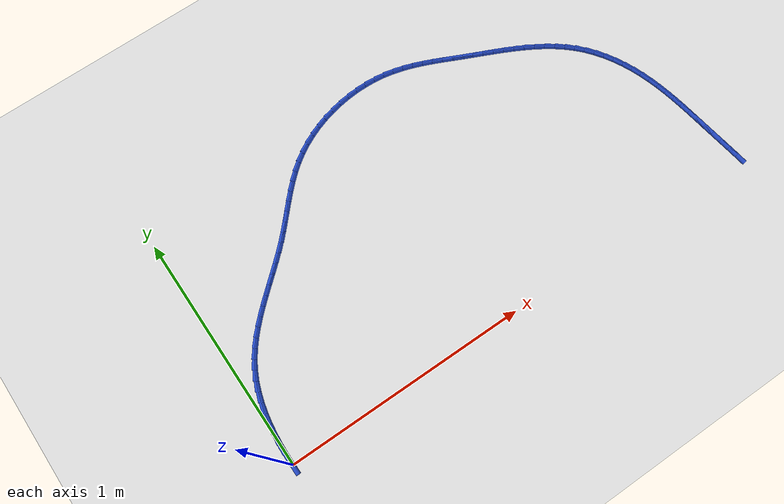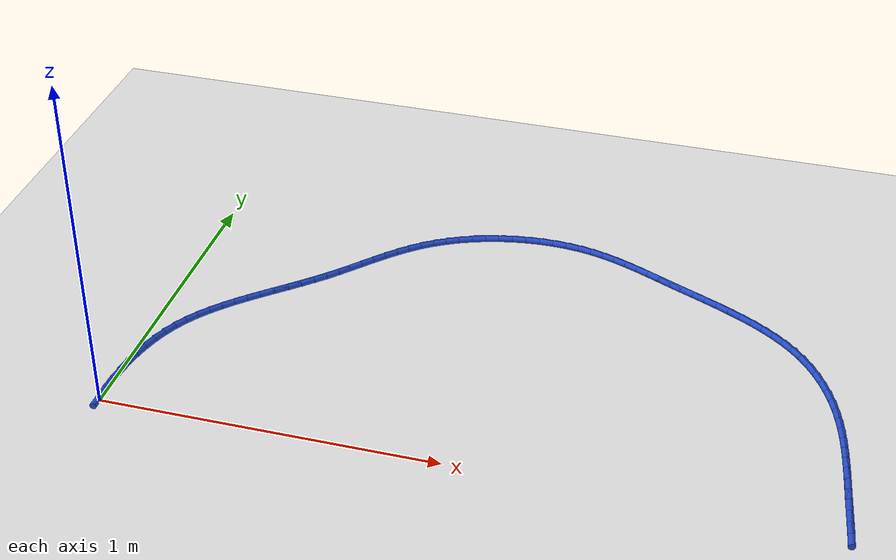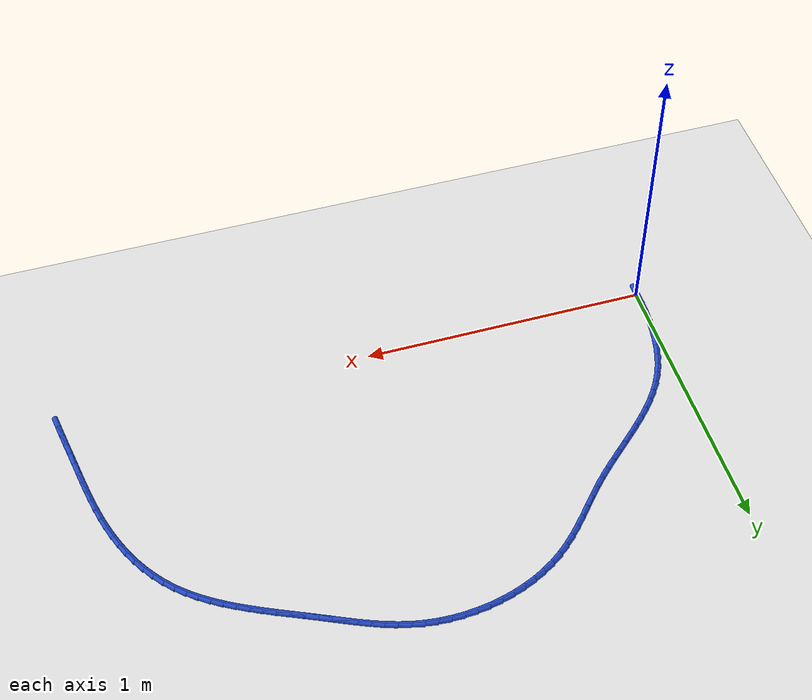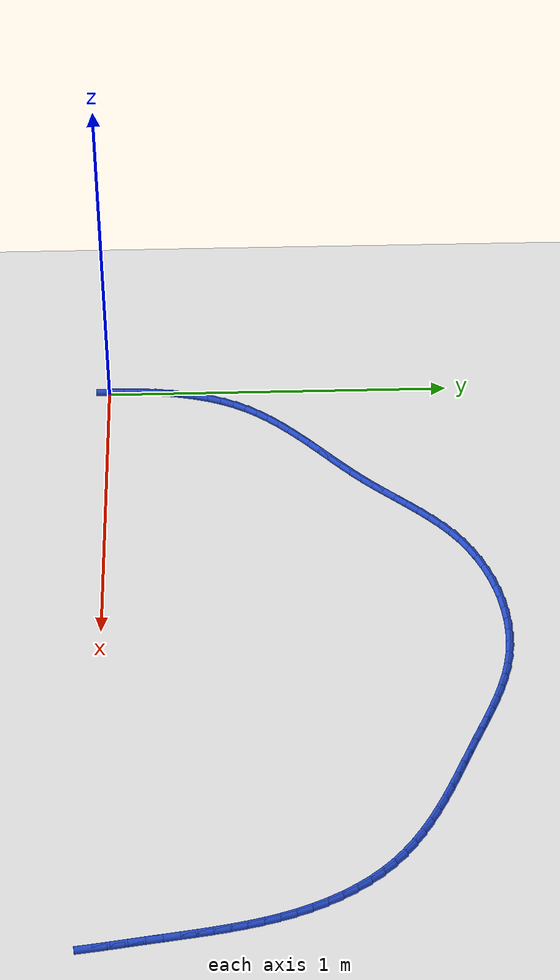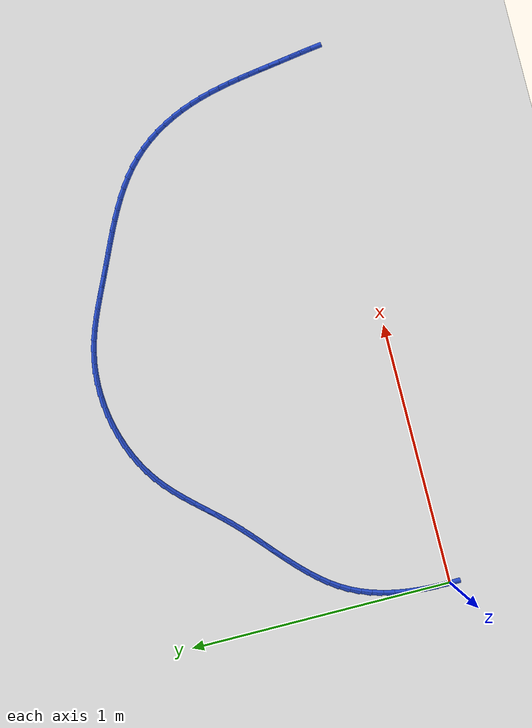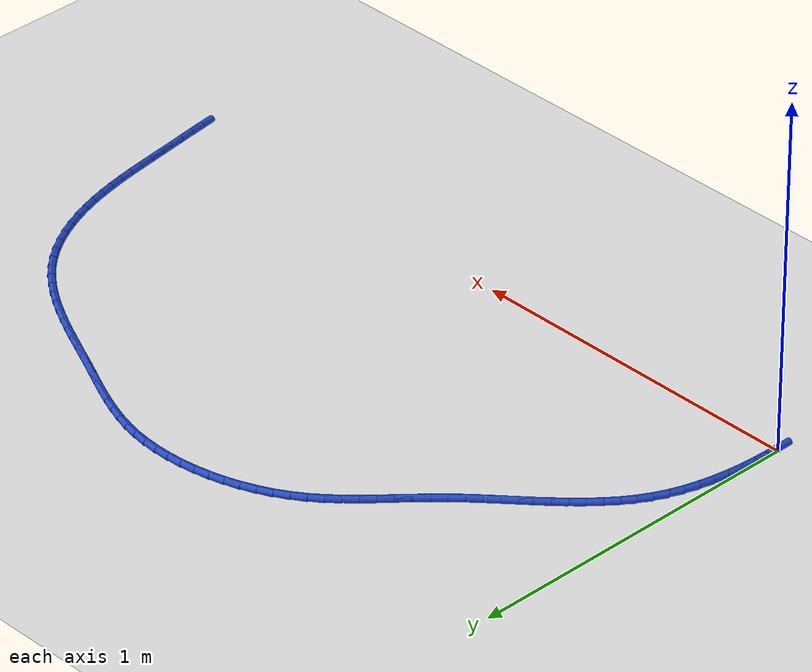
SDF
<sdf version="1.6">
 <world name="default">
  <model name="ground_plane">
   <static>1</static>
   <link name="link">
    <collision name="collision">
     <geometry><plane><normal>0 0 1</normal><size>100 100</size></plane></geometry>
     <surface><friction><ode><mu>100</mu><mu2>50</mu2></ode></friction></surface>
    </collision>
    <visual name="visual">
     <cast_shadows>0</cast_shadows>
     <geometry><plane><normal>0 0 1</normal><size>100 100</size></plane></geometry>
     <material>
      <script><uri>file://media/materials/scripts/gazebo.material</uri><name>Gazebo/WhiteGlow</name></script>
     </material>
    </visual>
   </link>
  </model>
  <model name="line">
   <link name="link_1">
    <pose>-5.092528736734469e-05 0.04307818474582921 0.01 0 1.57 1.536348133848838</pose>
    <collision name="collision">
     <geometry><cylinder><radius>0.01</radius><length>0.08</length></cylinder></geometry>
    </collision>
    <visual name="visual">
     <material>
      <script><name>Gazebo/Blue</name><uri>file://media/materials/scripts/gazebo.material</uri></script>
     </material>
     <geometry><cylinder><radius>0.01</radius><length>0.08</length></cylinder></geometry>
    </visual>
   </link>
   <link name="link_2">
    <pose>0.0014344221991047141 0.08617942663825474 0.01 0 1.57 1.4964940591130282</pose>
    <collision name="collision">
     <geometry><cylinder><radius>0.01</radius><length>0.08</length></cylinder></geometry>
    </collision>
    <visual name="visual">
     <material>
      <script><name>Gazebo/Blue</name><uri>file://media/materials/scripts/gazebo.material</uri></script>
     </material>
     <geometry><cylinder><radius>0.01</radius><length>0.08</length></cylinder></geometry>
    </visual>
   </link>
   <link name="link_3">
    <pose>0.004627960893907758 0.12908066826286146 0.01 0 1.57 1.4519182333033531</pose>
    <collision name="collision">
     <geometry><cylinder><radius>0.01</radius><length>0.08</length></cylinder></geometry>
    </collision>
    <visual name="visual">
     <material>
      <script><name>Gazebo/Blue</name><uri>file://media/materials/scripts/gazebo.material</uri></script>
     </material>
     <geometry><cylinder><radius>0.01</radius><length>0.08</length></cylinder></geometry>
    </visual>
   </link>
   <link name="link_4">
    <pose>0.009701609231533365 0.1715588522052341 0.01 0 1.57 1.4020756962306076</pose>
    <collision name="collision">
     <geometry><cylinder><radius>0.01</radius><length>0.08</length></cylinder></geometry>
    </collision>
    <visual name="visual">
     <material>
      <script><name>Gazebo/Blue</name><uri>file://media/materials/scripts/gazebo.material</uri></script>
     </material>
     <geometry><cylinder><radius>0.01</radius><length>0.08</length></cylinder></geometry>
    </visual>
   </link>
   <link name="link_5">
    <pose>0.016827285646473136 0.2133909210509577 0.01 0 1.57 1.3463943189602026</pose>
    <collision name="collision">
     <geometry><cylinder><radius>0.01</radius><length>0.08</length></cylinder></geometry>
    </collision>
    <visual name="visual">
     <material>
      <script><name>Gazebo/Blue</name><uri>file://media/materials/scripts/gazebo.material</uri></script>
     </material>
     <geometry><cylinder><radius>0.01</radius><length>0.08</length></cylinder></geometry>
    </visual>
   </link>
   <link name="link_6">
    <pose>0.026176908573218673 0.2543538173856171 0.01 0 1.57 1.284310466505673</pose>
    <collision name="collision">
     <geometry><cylinder><radius>0.01</radius><length>0.08</length></cylinder></geometry>
    </collision>
    <visual name="visual">
     <material>
      <script><name>Gazebo/Blue</name><uri>file://media/materials/scripts/gazebo.material</uri></script>
     </material>
     <geometry><cylinder><radius>0.01</radius><length>0.08</length></cylinder></geometry>
    </visual>
   </link>
   <link name="link_7">
    <pose>0.037922396446261525 0.294224483794797 0.01 0 1.57 1.2153267936622847</pose>
    <collision name="collision">
     <geometry><cylinder><radius>0.01</radius><length>0.08</length></cylinder></geometry>
    </collision>
    <visual name="visual">
     <material>
      <script><name>Gazebo/Blue</name><uri>file://media/materials/scripts/gazebo.material</uri></script>
     </material>
     <geometry><cylinder><radius>0.01</radius><length>0.08</length></cylinder></geometry>
    </visual>
   </link>
   <link name="link_8">
    <pose>0.0522356677000933 0.33277986286408223 0.01 0 1.57 1.1390972540197581</pose>
    <collision name="collision">
     <geometry><cylinder><radius>0.01</radius><length>0.08</length></cylinder></geometry>
    </collision>
    <visual name="visual">
     <material>
      <script><name>Gazebo/Blue</name><uri>file://media/materials/scripts/gazebo.material</uri></script>
     </material>
     <geometry><cylinder><radius>0.01</radius><length>0.08</length></cylinder></geometry>
    </visual>
   </link>
   <link name="link_9">
    <pose>0.06928864076920561 0.369796897179058 0.01 0 1.57 1.0562807380471253</pose>
    <collision name="collision">
     <geometry><cylinder><radius>0.01</radius><length>0.08</length></cylinder></geometry>
    </collision>
    <visual name="visual">
     <material>
      <script><name>Gazebo/Blue</name><uri>file://media/materials/scripts/gazebo.material</uri></script>
     </material>
     <geometry><cylinder><radius>0.01</radius><length>0.08</length></cylinder></geometry>
    </visual>
   </link>
   <link name="link_10">
    <pose>0.08923008699137204 0.405072624164393 0.01 0 1.57 0.9768405126058521</pose>
    <collision name="collision">
     <geometry><cylinder><radius>0.01</radius><length>0.08</length></cylinder></geometry>
    </collision>
    <visual name="visual">
     <material>
      <script><name>Gazebo/Blue</name><uri>file://media/materials/scripts/gazebo.material</uri></script>
     </material>
     <geometry><cylinder><radius>0.01</radius><length>0.08</length></cylinder></geometry>
    </visual>
   </link>
   <link name="link_11">
    <pose>0.11191251096359234 0.4386612812104513 0.01 0 1.57 0.9082398506536468</pose>
    <collision name="collision">
     <geometry><cylinder><radius>0.01</radius><length>0.08</length></cylinder></geometry>
    </collision>
    <visual name="visual">
     <material>
      <script><name>Gazebo/Blue</name><uri>file://media/materials/scripts/gazebo.material</uri></script>
     </material>
     <geometry><cylinder><radius>0.01</radius><length>0.08</length></cylinder></geometry>
    </visual>
   </link>
   <link name="link_12">
    <pose>0.13698352509505812 0.47079498009045223 0.01 0 1.57 0.8509957041564209</pose>
    <collision name="collision">
     <geometry><cylinder><radius>0.01</radius><length>0.08</length></cylinder></geometry>
    </collision>
    <visual name="visual">
     <material>
      <script><name>Gazebo/Blue</name><uri>file://media/materials/scripts/gazebo.material</uri></script>
     </material>
     <geometry><cylinder><radius>0.01</radius><length>0.08</length></cylinder></geometry>
    </visual>
   </link>
   <link name="link_13">
    <pose>0.16408665229023406 0.501709382825856 0.01 0 1.57 0.8050177651373709</pose>
    <collision name="collision">
     <geometry><cylinder><radius>0.01</radius><length>0.08</length></cylinder></geometry>
    </collision>
    <visual name="visual">
     <material>
      <script><name>Gazebo/Blue</name><uri>file://media/materials/scripts/gazebo.material</uri></script>
     </material>
     <geometry><cylinder><radius>0.01</radius><length>0.08</length></cylinder></geometry>
    </visual>
   </link>
   <link name="link_14">
    <pose>0.192865415453585 0.5316401514381229 0.01 0 1.57 0.7699622364212031</pose>
    <collision name="collision">
     <geometry><cylinder><radius>0.01</radius><length>0.08</length></cylinder></geometry>
    </collision>
    <visual name="visual">
     <material>
      <script><name>Gazebo/Blue</name><uri>file://media/materials/scripts/gazebo.material</uri></script>
     </material>
     <geometry><cylinder><radius>0.01</radius><length>0.08</length></cylinder></geometry>
    </visual>
   </link>
   <link name="link_15">
    <pose>0.22296333748957556 0.5608229479487133 0.01 0 1.57 0.7454048712055941</pose>
    <collision name="collision">
     <geometry><cylinder><radius>0.01</radius><length>0.08</length></cylinder></geometry>
    </collision>
    <visual name="visual">
     <material>
      <script><name>Gazebo/Blue</name><uri>file://media/materials/scripts/gazebo.material</uri></script>
     </material>
     <geometry><cylinder><radius>0.01</radius><length>0.08</length></cylinder></geometry>
    </visual>
   </link>
   <link name="link_16">
    <pose>0.2540239413026707 0.5894934343790881 0.01 0 1.57 0.7309575903352178</pose>
    <collision name="collision">
     <geometry><cylinder><radius>0.01</radius><length>0.08</length></cylinder></geometry>
    </collision>
    <visual name="visual">
     <material>
      <script><name>Gazebo/Blue</name><uri>file://media/materials/scripts/gazebo.material</uri></script>
     </material>
     <geometry><cylinder><radius>0.01</radius><length>0.08</length></cylinder></geometry>
    </visual>
   </link>
   <link name="link_17">
    <pose>0.285690749797335 0.6178872727507071 0.01 0 1.57 0.726337679582761</pose>
    <collision name="collision">
     <geometry><cylinder><radius>0.01</radius><length>0.08</length></cylinder></geometry>
    </collision>
    <visual name="visual">
     <material>
      <script><name>Gazebo/Blue</name><uri>file://media/materials/scripts/gazebo.material</uri></script>
     </material>
     <geometry><cylinder><radius>0.01</radius><length>0.08</length></cylinder></geometry>
    </visual>
   </link>
   <link name="link_18">
    <pose>0.3176072858780333 0.646240125085031 0.01 0 1.57 0.7314016075255899</pose>
    <collision name="collision">
     <geometry><cylinder><radius>0.01</radius><length>0.08</length></cylinder></geometry>
    </collision>
    <visual name="visual">
     <material>
      <script><name>Gazebo/Blue</name><uri>file://media/materials/scripts/gazebo.material</uri></script>
     </material>
     <geometry><cylinder><radius>0.01</radius><length>0.08</length></cylinder></geometry>
    </visual>
   </link>
   <link name="link_19">
    <pose>0.3494170724492303 0.6747876534035203 0.01 0 1.57 0.7461524125041278</pose>
    <collision name="collision">
     <geometry><cylinder><radius>0.01</radius><length>0.08</length></cylinder></geometry>
    </collision>
    <visual name="visual">
     <material>
      <script><name>Gazebo/Blue</name><uri>file://media/materials/scripts/gazebo.material</uri></script>
     </material>
     <geometry><cylinder><radius>0.01</radius><length>0.08</length></cylinder></geometry>
    </visual>
   </link>
   <link name="link_20">
    <pose>0.38076363241539085 0.7037655197276352 0.01 0 1.57 0.7707244732574585</pose>
    <collision name="collision">
     <geometry><cylinder><radius>0.01</radius><length>0.08</length></cylinder></geometry>
    </collision>
    <visual name="visual">
     <material>
      <script><name>Gazebo/Blue</name><uri>file://media/materials/scripts/gazebo.material</uri></script>
     </material>
     <geometry><cylinder><radius>0.01</radius><length>0.08</length></cylinder></geometry>
    </visual>
   </link>
   <link name="link_21">
    <pose>0.4112904886809796 0.7334093860788361 0.01 0 1.57 0.8033352467335615</pose>
    <collision name="collision">
     <geometry><cylinder><radius>0.01</radius><length>0.08</length></cylinder></geometry>
    </collision>
    <visual name="visual">
     <material>
      <script><name>Gazebo/Blue</name><uri>file://media/materials/scripts/gazebo.material</uri></script>
     </material>
     <geometry><cylinder><radius>0.01</radius><length>0.08</length></cylinder></geometry>
    </visual>
   </link>
   <link name="link_22">
    <pose>0.4407071087868779 0.7639006949583271 0.01 0 1.57 0.8291740088223976</pose>
    <collision name="collision">
     <geometry><cylinder><radius>0.01</radius><length>0.08</length></cylinder></geometry>
    </collision>
    <visual name="visual">
     <material>
      <script><name>Gazebo/Blue</name><uri>file://media/materials/scripts/gazebo.material</uri></script>
     </material>
     <geometry><cylinder><radius>0.01</radius><length>0.08</length></cylinder></geometry>
    </visual>
   </link>
   <link name="link_23">
    <pose>0.4692128195523241 0.795018127755733 0.01 0 1.57 0.8413790691090767</pose>
    <collision name="collision">
     <geometry><cylinder><radius>0.01</radius><length>0.08</length></cylinder></geometry>
    </collision>
    <visual name="visual">
     <material>
      <script><name>Gazebo/Blue</name><uri>file://media/materials/scripts/gazebo.material</uri></script>
     </material>
     <geometry><cylinder><radius>0.01</radius><length>0.08</length></cylinder></geometry>
    </visual>
   </link>
   <link name="link_24">
    <pose>0.4972274812149523 0.8263590438184976 0.01 0 1.57 0.8397617513056158</pose>
    <collision name="collision">
     <geometry><cylinder><radius>0.01</radius><length>0.08</length></cylinder></geometry>
    </collision>
    <visual name="visual">
     <material>
      <script><name>Gazebo/Blue</name><uri>file://media/materials/scripts/gazebo.material</uri></script>
     </material>
     <geometry><cylinder><radius>0.01</radius><length>0.08</length></cylinder></geometry>
    </visual>
   </link>
   <link name="link_25">
    <pose>0.525172015375039 0.8575199298442716 0.01 0 1.57 0.8241406312690777</pose>
    <collision name="collision">
     <geometry><cylinder><radius>0.01</radius><length>0.08</length></cylinder></geometry>
    </collision>
    <visual name="visual">
     <material>
      <script><name>Gazebo/Blue</name><uri>file://media/materials/scripts/gazebo.material</uri></script>
     </material>
     <geometry><cylinder><radius>0.01</radius><length>0.08</length></cylinder></geometry>
    </visual>
   </link>
   <link name="link_26">
    <pose>0.5534673436328607 0.8880972725307065 0.01 0 1.57 0.7943182456971727</pose>
    <collision name="collision">
     <geometry><cylinder><radius>0.01</radius><length>0.08</length></cylinder></geometry>
    </collision>
    <visual name="visual">
     <material>
      <script><name>Gazebo/Blue</name><uri>file://media/materials/scripts/gazebo.material</uri></script>
     </material>
     <geometry><cylinder><radius>0.01</radius><length>0.08</length></cylinder></geometry>
    </visual>
   </link>
   <link name="link_27">
    <pose>0.582534387588694 0.9176875585754533 0.01 0 1.57 0.7501752005780918</pose>
    <collision name="collision">
     <geometry><cylinder><radius>0.01</radius><length>0.08</length></cylinder></geometry>
    </collision>
    <visual name="visual">
     <material>
      <script><name>Gazebo/Blue</name><uri>file://media/materials/scripts/gazebo.material</uri></script>
     </material>
     <geometry><cylinder><radius>0.01</radius><length>0.08</length></cylinder></geometry>
    </visual>
   </link>
   <link name="link_28">
    <pose>0.6127940688428153 0.9458872746761625 0.01 0 1.57 0.6918539752741508</pose>
    <collision name="collision">
     <geometry><cylinder><radius>0.01</radius><length>0.08</length></cylinder></geometry>
    </collision>
    <visual name="visual">
     <material>
      <script><name>Gazebo/Blue</name><uri>file://media/materials/scripts/gazebo.material</uri></script>
     </material>
     <geometry><cylinder><radius>0.01</radius><length>0.08</length></cylinder></geometry>
    </visual>
   </link>
   <link name="link_29">
    <pose>0.644667308995501 0.9722929075304855 0.01 0 1.57 0.6203816824784673</pose>
    <collision name="collision">
     <geometry><cylinder><radius>0.01</radius><length>0.08</length></cylinder></geometry>
    </collision>
    <visual name="visual">
     <material>
      <script><name>Gazebo/Blue</name><uri>file://media/materials/scripts/gazebo.material</uri></script>
     </material>
     <geometry><cylinder><radius>0.01</radius><length>0.08</length></cylinder></geometry>
    </visual>
   </link>
   <link name="link_30">
    <pose>0.6785599540155693 0.9965087067793307 0.01 0 1.57 0.5447760766698809</pose>
    <collision name="collision">
     <geometry><cylinder><radius>0.01</radius><length>0.08</length></cylinder></geometry>
    </collision>
    <visual name="visual">
     <material>
      <script><name>Gazebo/Blue</name><uri>file://media/materials/scripts/gazebo.material</uri></script>
     </material>
     <geometry><cylinder><radius>0.01</radius><length>0.08</length></cylinder></geometry>
    </visual>
   </link>
   <link name="link_31">
    <pose>0.7145421572466443 1.0183117813437406 0.01 0 1.57 0.4727266441883336</pose>
    <collision name="collision">
     <geometry><cylinder><radius>0.01</radius><length>0.08</length></cylinder></geometry>
    </collision>
    <visual name="visual">
     <material>
      <script><name>Gazebo/Blue</name><uri>file://media/materials/scripts/gazebo.material</uri></script>
     </material>
     <geometry><cylinder><radius>0.01</radius><length>0.08</length></cylinder></geometry>
    </visual>
   </link>
   <link name="link_32">
    <pose>0.7523544042412301 1.037648997037755 0.01 0 1.57 0.4038822681004972</pose>
    <collision name="collision">
     <geometry><cylinder><radius>0.01</radius><length>0.08</length></cylinder></geometry>
    </collision>
    <visual name="visual">
     <material>
      <script><name>Gazebo/Blue</name><uri>file://media/materials/scripts/gazebo.material</uri></script>
     </material>
     <geometry><cylinder><radius>0.01</radius><length>0.08</length></cylinder></geometry>
    </visual>
   </link>
   <link name="link_33">
    <pose>0.7917233100110839 1.054474362077449 0.01 0 1.57 0.33753491464490193</pose>
    <collision name="collision">
     <geometry><cylinder><radius>0.01</radius><length>0.08</length></cylinder></geometry>
    </collision>
    <visual name="visual">
     <material>
      <script><name>Gazebo/Blue</name><uri>file://media/materials/scripts/gazebo.material</uri></script>
     </material>
     <geometry><cylinder><radius>0.01</radius><length>0.08</length></cylinder></geometry>
    </visual>
   </link>
   <link name="link_34">
    <pose>0.8323754895679619 1.068741884678896 0.01 0 1.57 0.27297107034029305</pose>
    <collision name="collision">
     <geometry><cylinder><radius>0.01</radius><length>0.08</length></cylinder></geometry>
    </collision>
    <visual name="visual">
     <material>
      <script><name>Gazebo/Blue</name><uri>file://media/materials/scripts/gazebo.material</uri></script>
     </material>
     <geometry><cylinder><radius>0.01</radius><length>0.08</length></cylinder></geometry>
    </visual>
   </link>
   <link name="link_35">
    <pose>0.8740375579236208 1.0804055730581705 0.01 0 1.57 0.2094793990500455</pose>
    <collision name="collision">
     <geometry><cylinder><radius>0.01</radius><length>0.08</length></cylinder></geometry>
    </collision>
    <visual name="visual">
     <material>
      <script><name>Gazebo/Blue</name><uri>file://media/materials/scripts/gazebo.material</uri></script>
     </material>
     <geometry><cylinder><radius>0.01</radius><length>0.08</length></cylinder></geometry>
    </visual>
   </link>
   <link name="link_36">
    <pose>0.9164361300898182 1.089419435431347 0.01 0 1.57 0.14635147796256123</pose>
    <collision name="collision">
     <geometry><cylinder><radius>0.01</radius><length>0.08</length></cylinder></geometry>
    </collision>
    <visual name="visual">
     <material>
      <script><name>Gazebo/Blue</name><uri>file://media/materials/scripts/gazebo.material</uri></script>
     </material>
     <geometry><cylinder><radius>0.01</radius><length>0.08</length></cylinder></geometry>
    </visual>
   </link>
   <link name="link_37">
    <pose>0.9592978210783093 1.0957374800144988 0.01 0 1.57 0.0828786281595138</pose>
    <collision name="collision">
     <geometry><cylinder><radius>0.01</radius><length>0.08</length></cylinder></geometry>
    </collision>
    <visual name="visual">
     <material>
      <script><name>Gazebo/Blue</name><uri>file://media/materials/scripts/gazebo.material</uri></script>
     </material>
     <geometry><cylinder><radius>0.01</radius><length>0.08</length></cylinder></geometry>
    </visual>
   </link>
   <link name="link_38">
    <pose>1.0023492459008523 1.099313715023701 0.01 0 1.57 0.018347359266134493</pose>
    <collision name="collision">
     <geometry><cylinder><radius>0.01</radius><length>0.08</length></cylinder></geometry>
    </collision>
    <visual name="visual">
     <material>
      <script><name>Gazebo/Blue</name><uri>file://media/materials/scripts/gazebo.material</uri></script>
     </material>
     <geometry><cylinder><radius>0.01</radius><length>0.08</length></cylinder></geometry>
    </visual>
   </link>
   <link name="link_39">
    <pose>1.0453170195692028 1.100102148675027 0.01 0 1.57 -0.04796421919625381</pose>
    <collision name="collision">
     <geometry><cylinder><radius>0.01</radius><length>0.08</length></cylinder></geometry>
    </collision>
    <visual name="visual">
     <material>
      <script><name>Gazebo/Blue</name><uri>file://media/materials/scripts/gazebo.material</uri></script>
     </material>
     <geometry><cylinder><radius>0.01</radius><length>0.08</length></cylinder></geometry>
    </visual>
   </link>
   <link name="link_40">
    <pose>1.0879277570951178 1.0980567891845514 0.01 0 1.57 -0.11678646031318861</pose>
    <collision name="collision">
     <geometry><cylinder><radius>0.01</radius><length>0.08</length></cylinder></geometry>
    </collision>
    <visual name="visual">
     <material>
      <script><name>Gazebo/Blue</name><uri>file://media/materials/scripts/gazebo.material</uri></script>
     </material>
     <geometry><cylinder><radius>0.01</radius><length>0.08</length></cylinder></geometry>
    </visual>
   </link>
   <link name="link_41">
    <pose>1.129908073490354 1.093131644768348 0.01 0 1.57 -0.18860787591641537</pose>
    <collision name="collision">
     <geometry><cylinder><radius>0.01</radius><length>0.08</length></cylinder></geometry>
    </collision>
    <visual name="visual">
     <material>
      <script><name>Gazebo/Blue</name><uri>file://media/materials/scripts/gazebo.material</uri></script>
     </material>
     <geometry><cylinder><radius>0.01</radius><length>0.08</length></cylinder></geometry>
    </visual>
   </link>
   <link name="link_42">
    <pose>1.1709930747108805 1.0852894790727863 0.01 0 1.57 -0.257580707574147</pose>
    <collision name="collision">
     <geometry><cylinder><radius>0.01</radius><length>0.08</length></cylinder></geometry>
    </collision>
    <visual name="visual">
     <material>
      <script><name>Gazebo/Blue</name><uri>file://media/materials/scripts/gazebo.material</uri></script>
     </material>
     <geometry><cylinder><radius>0.01</radius><length>0.08</length></cylinder></geometry>
    </visual>
   </link>
   <link name="link_43">
    <pose>1.211133324264604 1.0747152246256129 0.01 0 1.57 -0.3163138986401706</pose>
    <collision name="collision">
     <geometry><cylinder><radius>0.01</radius><length>0.08</length></cylinder></geometry>
    </collision>
    <visual name="visual">
     <material>
      <script><name>Gazebo/Blue</name><uri>file://media/materials/scripts/gazebo.material</uri></script>
     </material>
     <geometry><cylinder><radius>0.01</radius><length>0.08</length></cylinder></geometry>
    </visual>
   </link>
   <link name="link_44">
    <pose>1.2505066801687879 1.0618281885050718 0.01 0 1.57 -0.36375824159920217</pose>
    <collision name="collision">
     <geometry><cylinder><radius>0.01</radius><length>0.08</length></cylinder></geometry>
    </collision>
    <visual name="visual">
     <material>
      <script><name>Gazebo/Blue</name><uri>file://media/materials/scripts/gazebo.material</uri></script>
     </material>
     <geometry><cylinder><radius>0.01</radius><length>0.08</length></cylinder></geometry>
    </visual>
   </link>
   <link name="link_45">
    <pose>1.2893018608993845 1.0470588765426507 0.01 0 1.57 -0.3996333123550256</pose>
    <collision name="collision">
     <geometry><cylinder><radius>0.01</radius><length>0.08</length></cylinder></geometry>
    </collision>
    <visual name="visual">
     <material>
      <script><name>Gazebo/Blue</name><uri>file://media/materials/scripts/gazebo.material</uri></script>
     </material>
     <geometry><cylinder><radius>0.01</radius><length>0.08</length></cylinder></geometry>
    </visual>
   </link>
   <link name="link_46">
    <pose>1.327707584932346 1.030837794569836 0.01 0 1.57 -0.4239439633681479</pose>
    <collision name="collision">
     <geometry><cylinder><radius>0.01</radius><length>0.08</length></cylinder></geometry>
    </collision>
    <visual name="visual">
     <material>
      <script><name>Gazebo/Blue</name><uri>file://media/materials/scripts/gazebo.material</uri></script>
     </material>
     <geometry><cylinder><radius>0.01</radius><length>0.08</length></cylinder></geometry>
    </visual>
   </link>
   <link name="link_47">
    <pose>1.365912570743625 1.0135954484181144 0.01 0 1.57 -0.43683613150107903</pose>
    <collision name="collision">
     <geometry><cylinder><radius>0.01</radius><length>0.08</length></cylinder></geometry>
    </collision>
    <visual name="visual">
     <material>
      <script><name>Gazebo/Blue</name><uri>file://media/materials/scripts/gazebo.material</uri></script>
     </material>
     <geometry><cylinder><radius>0.01</radius><length>0.08</length></cylinder></geometry>
    </visual>
   </link>
   <link name="link_48">
    <pose>1.4041055368091742 0.9957623439189733 0.01 0 1.57 -0.4384984399056323</pose>
    <collision name="collision">
     <geometry><cylinder><radius>0.01</radius><length>0.08</length></cylinder></geometry>
    </collision>
    <visual name="visual">
     <material>
      <script><name>Gazebo/Blue</name><uri>file://media/materials/scripts/gazebo.material</uri></script>
     </material>
     <geometry><cylinder><radius>0.01</radius><length>0.08</length></cylinder></geometry>
    </visual>
   </link>
   <link name="link_49">
    <pose>1.4424752016049454 0.9777689869038989 0.01 0 1.57 -0.4313074848804435</pose>
    <collision name="collision">
     <geometry><cylinder><radius>0.01</radius><length>0.08</length></cylinder></geometry>
    </collision>
    <visual name="visual">
     <material>
      <script><name>Gazebo/Blue</name><uri>file://media/materials/scripts/gazebo.material</uri></script>
     </material>
     <geometry><cylinder><radius>0.01</radius><length>0.08</length></cylinder></geometry>
    </visual>
   </link>
   <link name="link_50">
    <pose>1.4811609476985994 0.9599656337694764 0.01 0 1.57 -0.4273607068896546</pose>
    <collision name="collision">
     <geometry><cylinder><radius>0.01</radius><length>0.08</length></cylinder></geometry>
    </collision>
    <visual name="visual">
     <material>
      <script><name>Gazebo/Blue</name><uri>file://media/materials/scripts/gazebo.material</uri></script>
     </material>
     <geometry><cylinder><radius>0.01</radius><length>0.08</length></cylinder></geometry>
    </visual>
   </link>
   <link name="link_51">
    <pose>1.520031744659747 0.9422626890673529 0.01 0 1.57 -0.43069311473965033</pose>
    <collision name="collision">
     <geometry><cylinder><radius>0.01</radius><length>0.08</length></cylinder></geometry>
    </collision>
    <visual name="visual">
     <material>
      <script><name>Gazebo/Blue</name><uri>file://media/materials/scripts/gazebo.material</uri></script>
     </material>
     <geometry><cylinder><radius>0.01</radius><length>0.08</length></cylinder></geometry>
    </visual>
   </link>
   <link name="link_52">
    <pose>1.558864391684482 0.9244206336800799 0.01 0 1.57 -0.44131992798824843</pose>
    <collision name="collision">
     <geometry><cylinder><radius>0.01</radius><length>0.08</length></cylinder></geometry>
    </collision>
    <visual name="visual">
     <material>
      <script><name>Gazebo/Blue</name><uri>file://media/materials/scripts/gazebo.material</uri></script>
     </material>
     <geometry><cylinder><radius>0.01</radius><length>0.08</length></cylinder></geometry>
    </visual>
   </link>
   <link name="link_53">
    <pose>1.5974356099540368 0.90619982159179 0.01 0 1.57 -0.45935259824972974</pose>
    <collision name="collision">
     <geometry><cylinder><radius>0.01</radius><length>0.08</length></cylinder></geometry>
    </collision>
    <visual name="visual">
     <material>
      <script><name>Gazebo/Blue</name><uri>file://media/materials/scripts/gazebo.material</uri></script>
     </material>
     <geometry><cylinder><radius>0.01</radius><length>0.08</length></cylinder></geometry>
    </visual>
   </link>
   <link name="link_54">
    <pose>1.6355221206496413 0.8873606067866162 0.01 0 1.57 -0.484988050522203</pose>
    <collision name="collision">
     <geometry><cylinder><radius>0.01</radius><length>0.08</length></cylinder></geometry>
    </collision>
    <visual name="visual">
     <material>
      <script><name>Gazebo/Blue</name><uri>file://media/materials/scripts/gazebo.material</uri></script>
     </material>
     <geometry><cylinder><radius>0.01</radius><length>0.08</length></cylinder></geometry>
    </visual>
   </link>
   <link name="link_55">
    <pose>1.6729006449525263 0.8676633432486908 0.01 0 1.57 -0.5184830303943455</pose>
    <collision name="collision">
     <geometry><cylinder><radius>0.01</radius><length>0.08</length></cylinder></geometry>
    </collision>
    <visual name="visual">
     <material>
      <script><name>Gazebo/Blue</name><uri>file://media/materials/scripts/gazebo.material</uri></script>
     </material>
     <geometry><cylinder><radius>0.01</radius><length>0.08</length></cylinder></geometry>
    </visual>
   </link>
   <link name="link_56">
    <pose>1.7093479040439243 0.8468683849621463 0.01 0 1.57 -0.5601128313264404</pose>
    <collision name="collision">
     <geometry><cylinder><radius>0.01</radius><length>0.08</length></cylinder></geometry>
    </collision>
    <visual name="visual">
     <material>
      <script><name>Gazebo/Blue</name><uri>file://media/materials/scripts/gazebo.material</uri></script>
     </material>
     <geometry><cylinder><radius>0.01</radius><length>0.08</length></cylinder></geometry>
    </visual>
   </link>
   <link name="link_57">
    <pose>1.7446406191050652 0.8247360859111158 0.01 0 1.57 -0.6101094952772512</pose>
    <collision name="collision">
     <geometry><cylinder><radius>0.01</radius><length>0.08</length></cylinder></geometry>
    </collision>
    <visual name="visual">
     <material>
      <script><name>Gazebo/Blue</name><uri>file://media/materials/scripts/gazebo.material</uri></script>
     </material>
     <geometry><cylinder><radius>0.01</radius><length>0.08</length></cylinder></geometry>
    </visual>
   </link>
   <link name="link_58">
    <pose>1.77855551131718 0.8010268000797313 0.01 0 1.57 -0.6685759168220262</pose>
    <collision name="collision">
     <geometry><cylinder><radius>0.01</radius><length>0.08</length></cylinder></geometry>
    </collision>
    <visual name="visual">
     <material>
      <script><name>Gazebo/Blue</name><uri>file://media/materials/scripts/gazebo.material</uri></script>
     </material>
     <geometry><cylinder><radius>0.01</radius><length>0.08</length></cylinder></geometry>
    </visual>
   </link>
   <link name="link_59">
    <pose>1.8108693018614996 0.7755008814521257 0.01 0 1.57 -0.7353773761889294</pose>
    <collision name="collision">
     <geometry><cylinder><radius>0.01</radius><length>0.08</length></cylinder></geometry>
    </collision>
    <visual name="visual">
     <material>
      <script><name>Gazebo/Blue</name><uri>file://media/materials/scripts/gazebo.material</uri></script>
     </material>
     <geometry><cylinder><radius>0.01</radius><length>0.08</length></cylinder></geometry>
    </visual>
   </link>
   <link name="link_60">
    <pose>1.841358711919256 0.747918684012432 0.01 0 1.57 -0.8100184010690655</pose>
    <collision name="collision">
     <geometry><cylinder><radius>0.01</radius><length>0.08</length></cylinder></geometry>
    </collision>
    <visual name="visual">
     <material>
      <script><name>Gazebo/Blue</name><uri>file://media/materials/scripts/gazebo.material</uri></script>
     </material>
     <geometry><cylinder><radius>0.01</radius><length>0.08</length></cylinder></geometry>
    </visual>
   </link>
   <link name="link_61">
    <pose>1.8698005219493108 0.7180407375300722 0.01 0 1.57 -0.8884042902895646</pose>
    <collision name="collision">
     <geometry><cylinder><radius>0.01</radius><length>0.08</length></cylinder></geometry>
    </collision>
    <visual name="visual">
     <material>
      <script><name>Gazebo/Blue</name><uri>file://media/materials/scripts/gazebo.material</uri></script>
     </material>
     <geometry><cylinder><radius>0.01</radius><length>0.08</length></cylinder></geometry>
    </visual>
   </link>
   <link name="link_62">
    <pose>1.8960210075168376 0.6857743474055029 0.01 0 1.57 -0.961427420518157</pose>
    <collision name="collision">
     <geometry><cylinder><radius>0.01</radius><length>0.08</length></cylinder></geometry>
    </collision>
    <visual name="visual">
     <material>
      <script><name>Gazebo/Blue</name><uri>file://media/materials/scripts/gazebo.material</uri></script>
     </material>
     <geometry><cylinder><radius>0.01</radius><length>0.08</length></cylinder></geometry>
    </visual>
   </link>
   <link name="link_63">
    <pose>1.9199857482486573 0.6514399193045532 0.01 0 1.57 -1.0284808883655816</pose>
    <collision name="collision">
     <geometry><cylinder><radius>0.01</radius><length>0.08</length></cylinder></geometry>
    </collision>
    <visual name="visual">
     <material>
      <script><name>Gazebo/Blue</name><uri>file://media/materials/scripts/gazebo.material</uri></script>
     </material>
     <geometry><cylinder><radius>0.01</radius><length>0.08</length></cylinder></geometry>
    </visual>
   </link>
   <link name="link_64">
    <pose>1.941684652881257 0.615430005832224 0.01 0 1.57 -1.0906293156326492</pose>
    <collision name="collision">
     <geometry><cylinder><radius>0.01</radius><length>0.08</length></cylinder></geometry>
    </collision>
    <visual name="visual">
     <material>
      <script><name>Gazebo/Blue</name><uri>file://media/materials/scripts/gazebo.material</uri></script>
     </material>
     <geometry><cylinder><radius>0.01</radius><length>0.08</length></cylinder></geometry>
    </visual>
   </link>
   <link name="link_65">
    <pose>1.9611076301511272 0.5781371595935149 0.01 0 1.57 -1.1489332867990572</pose>
    <collision name="collision">
     <geometry><cylinder><radius>0.01</radius><length>0.08</length></cylinder></geometry>
    </collision>
    <visual name="visual">
     <material>
      <script><name>Gazebo/Blue</name><uri>file://media/materials/scripts/gazebo.material</uri></script>
     </material>
     <geometry><cylinder><radius>0.01</radius><length>0.08</length></cylinder></geometry>
    </visual>
   </link>
   <link name="link_66">
    <pose>1.978244630774462 0.5399538767240922 0.01 0 1.57 -1.2037903093743976</pose>
    <collision name="collision">
     <geometry><cylinder><radius>0.01</radius><length>0.08</length></cylinder></geometry>
    </collision>
    <visual name="visual">
     <material>
      <script><name>Gazebo/Blue</name><uri>file://media/materials/scripts/gazebo.material</uri></script>
     </material>
     <geometry><cylinder><radius>0.01</radius><length>0.08</length></cylinder></geometry>
    </visual>
   </link>
   <link name="link_67">
    <pose>1.9931455937635707 0.5011919596245257 0.01 0 1.57 -1.2535357689847582</pose>
    <collision name="collision">
     <geometry><cylinder><radius>0.01</radius><length>0.08</length></cylinder></geometry>
    </collision>
    <visual name="visual">
     <material>
      <script><name>Gazebo/Blue</name><uri>file://media/materials/scripts/gazebo.material</uri></script>
     </material>
     <geometry><cylinder><radius>0.01</radius><length>0.08</length></cylinder></geometry>
    </visual>
   </link>
   <link name="link_68">
    <pose>2.006040102893518 0.4619215601095874 0.01 0 1.57 -1.2973195859681186</pose>
    <collision name="collision">
     <geometry><cylinder><radius>0.01</radius><length>0.08</length></cylinder></geometry>
    </collision>
    <visual name="visual">
     <material>
      <script><name>Gazebo/Blue</name><uri>file://media/materials/scripts/gazebo.material</uri></script>
     </material>
     <geometry><cylinder><radius>0.01</radius><length>0.08</length></cylinder></geometry>
    </visual>
   </link>
   <link name="link_69">
    <pose>2.0171912268545817 0.42216778749321787 0.01 0 1.57 -1.3347830337064457</pose>
    <collision name="collision">
     <geometry><cylinder><radius>0.01</radius><length>0.08</length></cylinder></geometry>
    </collision>
    <visual name="visual">
     <material>
      <script><name>Gazebo/Blue</name><uri>file://media/materials/scripts/gazebo.material</uri></script>
     </material>
     <geometry><cylinder><radius>0.01</radius><length>0.08</length></cylinder></geometry>
    </visual>
   </link>
   <link name="link_70">
    <pose>2.026862034337038 0.3819557510893568 0.01 0 1.57 -1.3657355196922714</pose>
    <collision name="collision">
     <geometry><cylinder><radius>0.01</radius><length>0.08</length></cylinder></geometry>
    </collision>
    <visual name="visual">
     <material>
      <script><name>Gazebo/Blue</name><uri>file://media/materials/scripts/gazebo.material</uri></script>
     </material>
     <geometry><cylinder><radius>0.01</radius><length>0.08</length></cylinder></geometry>
    </visual>
   </link>
   <link name="link_71">
    <pose>2.035315594031164 0.3413105602119435 0.01 0 1.57 -1.3901140071161753</pose>
    <collision name="collision">
     <geometry><cylinder><radius>0.01</radius><length>0.08</length></cylinder></geometry>
    </collision>
    <visual name="visual">
     <material>
      <script><name>Gazebo/Blue</name><uri>file://media/materials/scripts/gazebo.material</uri></script>
     </material>
     <geometry><cylinder><radius>0.01</radius><length>0.08</length></cylinder></geometry>
    </visual>
   </link>
   <link name="link_72">
    <pose>2.0428149746272357 0.30025732417491846 0.01 0 1.57 -1.4079440143782052</pose>
    <collision name="collision">
     <geometry><cylinder><radius>0.01</radius><length>0.08</length></cylinder></geometry>
    </collision>
    <visual name="visual">
     <material>
      <script><name>Gazebo/Blue</name><uri>file://media/materials/scripts/gazebo.material</uri></script>
     </material>
     <geometry><cylinder><radius>0.01</radius><length>0.08</length></cylinder></geometry>
    </visual>
   </link>
   <link name="link_73">
    <pose>2.0496232448155296 0.2588211522922209 0.01 0 1.57 -1.4193069458770249</pose>
    <collision name="collision">
     <geometry><cylinder><radius>0.01</radius><length>0.08</length></cylinder></geometry>
    </collision>
    <visual name="visual">
     <material>
      <script><name>Gazebo/Blue</name><uri>file://media/materials/scripts/gazebo.material</uri></script>
     </material>
     <geometry><cylinder><radius>0.01</radius><length>0.08</length></cylinder></geometry>
    </visual>
   </link>
   <link name="link_74">
    <pose>2.056003473286324 0.21702715387779142 0.01 0 1.57 -1.424315903116791</pose>
    <collision name="collision">
     <geometry><cylinder><radius>0.01</radius><length>0.08</length></cylinder></geometry>
    </collision>
    <visual name="visual">
     <material>
      <script><name>Gazebo/Blue</name><uri>file://media/materials/scripts/gazebo.material</uri></script>
     </material>
     <geometry><cylinder><radius>0.01</radius><length>0.08</length></cylinder></geometry>
    </visual>
   </link>
   <link name="link_75">
    <pose>2.062218728729893 0.17490043824556925 0.01 0 1.57 -1.423177559334123</pose>
    <collision name="collision">
     <geometry><cylinder><radius>0.01</radius><length>0.08</length></cylinder></geometry>
    </collision>
    <visual name="visual">
     <material>
      <script><name>Gazebo/Blue</name><uri>file://media/materials/scripts/gazebo.material</uri></script>
     </material>
     <geometry><cylinder><radius>0.01</radius><length>0.08</length></cylinder></geometry>
    </visual>
   </link>
   <link name="link_76">
    <pose>2.068528682488965 0.13246645027821166 0.01 0 1.57 -1.4200920375667612</pose>
    <collision name="collision">
     <geometry><cylinder><radius>0.01</radius><length>0.08</length></cylinder></geometry>
    </collision>
    <visual name="visual">
     <material>
      <script><name>Gazebo/Blue</name><uri>file://media/materials/scripts/gazebo.material</uri></script>
     </material>
     <geometry><cylinder><radius>0.01</radius><length>0.08</length></cylinder></geometry>
    </visual>
   </link>
   <link name="link_77">
    <pose>2.0750126155793556 0.08976845268530985 0.01 0 1.57 -1.4210755842290326</pose>
    <collision name="collision">
     <geometry><cylinder><radius>0.01</radius><length>0.08</length></cylinder></geometry>
    </collision>
    <visual name="visual">
     <material>
      <script><name>Gazebo/Blue</name><uri>file://media/materials/scripts/gazebo.material</uri></script>
     </material>
     <geometry><cylinder><radius>0.01</radius><length>0.08</length></cylinder></geometry>
    </visual>
   </link>
   <link name="link_78">
    <pose>2.0814829140303104 0.04687607039199683 0.01 0 1.57 -1.426564532214038</pose>
    <collision name="collision">
     <geometry><cylinder><radius>0.01</radius><length>0.08</length></cylinder></geometry>
    </collision>
    <visual name="visual">
     <material>
      <script><name>Gazebo/Blue</name><uri>file://media/materials/scripts/gazebo.material</uri></script>
     </material>
     <geometry><cylinder><radius>0.01</radius><length>0.08</length></cylinder></geometry>
    </visual>
   </link>
   <link name="link_79">
    <pose>2.0877304289932597 0.0038610554037920753 0.01 0 1.57 -1.4365691342710065</pose>
    <collision name="collision">
     <geometry><cylinder><radius>0.01</radius><length>0.08</length></cylinder></geometry>
    </collision>
    <visual name="visual">
     <material>
      <script><name>Gazebo/Blue</name><uri>file://media/materials/scripts/gazebo.material</uri></script>
     </material>
     <geometry><cylinder><radius>0.01</radius><length>0.08</length></cylinder></geometry>
    </visual>
   </link>
   <link name="link_160">
    <pose>-2.7755575615628914e-17 8.326672684688674e-17 0.01 0 1.57 -1.5686889025651125</pose>
    <collision name="collision">
     <geometry><cylinder><radius>0.01</radius><length>0.08</length></cylinder></geometry>
    </collision>
    <visual name="visual">
     <material>
      <script><name>Gazebo/Blue</name><uri>file://media/materials/scripts/gazebo.material</uri></script>
     </material>
     <geometry><cylinder><radius>0.01</radius><length>0.08</length></cylinder></geometry>
    </visual>
   </link>
   <link name="link_161">
    <pose>-9.083956135617303e-05 0.04310448062249456 0.01 0 1.57 -1.5686889025651123</pose>
    <collision name="collision">
     <geometry><cylinder><radius>0.01</radius><length>0.08</length></cylinder></geometry>
    </collision>
    <visual name="visual">
     <material>
      <script><name>Gazebo/Blue</name><uri>file://media/materials/scripts/gazebo.material</uri></script>
     </material>
     <geometry><cylinder><radius>0.01</radius><length>0.08</length></cylinder></geometry>
    </visual>
   </link>
  </model>
 </world>
</sdf>
